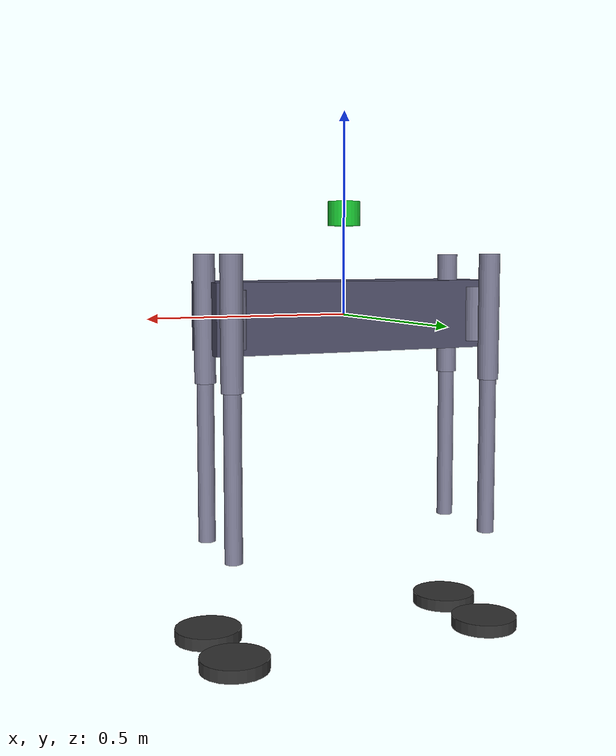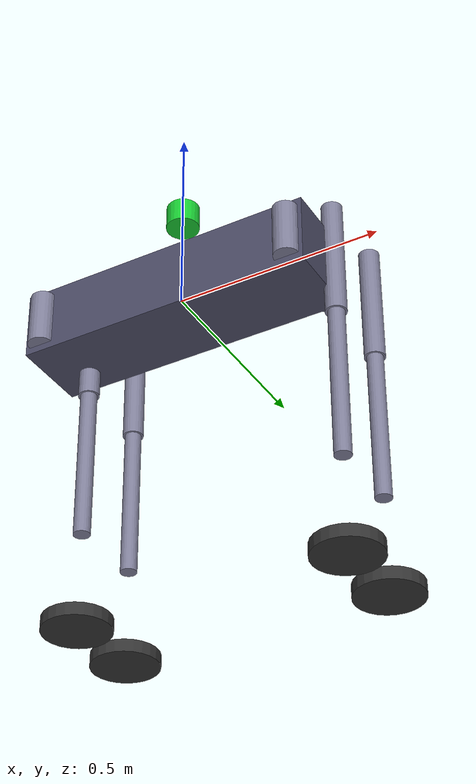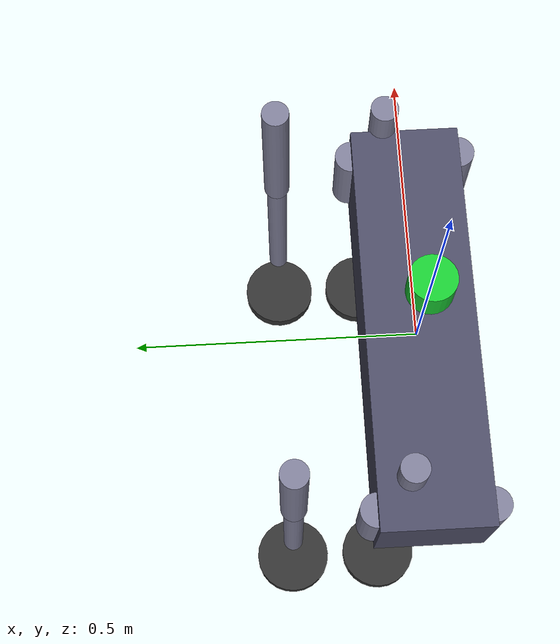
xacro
<?xml version="1.0"?>
<robot name="robot_dog" xmlns:xacro="http://www.ros.org/wiki/xacro">

  <!-- ========== 材料属性 ========== -->
  <material name="body_color">
    <color rgba="0.3 0.3 0.4 1.0"/>
  </material>
  <material name="leg_color">
    <color rgba="0.5 0.5 0.6 1.0"/>
  </material>
  <material name="wheel_color">
    <color rgba="0.2 0.2 0.2 1.0"/>
  </material>
  <material name="sensor_color">
    <color rgba="0.1 0.8 0.2 1.0"/>
  </material>

  <!-- ========== 躯体参数 (来自 MiniCheetah.h) ========== -->
  <xacro:property name="body_length" value="0.729"/>
  <xacro:property name="body_width" value="0.195"/>
  <xacro:property name="body_height" value="0.17"/>
  <xacro:property name="body_mass" value="27.0"/>

  <!-- 关节连杆参数 -->
  <xacro:property name="abad_link_length" value="0.136"/>
  <xacro:property name="hip_link_length" value="0.30"/>
  <xacro:property name="knee_link_length" value="0.452"/>
  <xacro:property name="wheel_radius" value="0.08"/>

  <!-- 每条腿的髋部位置 (body frame 原点在躯干几何中心) -->
  <!-- abadLocation = (bodyLength-0.08)/2, bodyWidth/2, 0 -->
  <!-- FR: (+x, -y) / FL: (+x, +y) / HR: (-x, -y) / HL: (-x, +y) -->
  <xacro:property name="hip_x" value="${(body_length - 0.08) / 2}"/>
  <xacro:property name="hip_y" value="${body_width / 2}"/>

  <!-- ========== 基础连杆 ========== -->
  <link name="base_link">
    <visual>
      <geometry>
        <box size="${body_length} ${body_width} ${body_height}"/>
      </geometry>
      <material name="body_color"/>
    </visual>
    <collision>
      <geometry>
        <box size="${body_length} ${body_width} ${body_height}"/>
      </geometry>
    </collision>
    <inertial>
      <mass value="${body_mass}"/>
      <origin xyz="0.00374 0.00011 -0.00480"/>
      <inertia ixx="0.3172" ixy="0.2057" ixz="-0.0412"
               iyy="1.2557" iyz="-0.0012" izz="1.4430"/>
    </inertial>
  </link>

  <!-- IMU 传感器（YESENSE，位于躯干内） -->
  <link name="imu_link">
    <visual>
      <geometry><box size="0.04 0.04 0.02"/></geometry>
      <material name="sensor_color"/>
    </visual>
  </link>
  <joint name="imu_joint" type="fixed">
    <parent link="base_link"/>
    <child link="imu_link"/>
    <origin xyz="0 0 0.02"/>
  </joint>

  <!-- LiDAR 传感器（DJI 360S，位于顶部） -->
  <link name="laser_link">
    <visual>
      <geometry><cylinder radius="0.04" length="0.06"/></geometry>
      <material name="sensor_color"/>
    </visual>
  </link>
  <joint name="laser_joint" type="fixed">
    <parent link="base_link"/>
    <child link="laser_link"/>
    <origin xyz="0 0 0.25" rpy="0 0 0"/>
  </joint>

  <!-- ========== 四条腿 ========== -->

  <!-- 腿: 前缀, x_sign(+1=前, -1=后), y_sign(+1=左, -1=右) -->
  <xacro:macro name="leg" params="prefix leg_idx x_sign y_sign">
    <!-- abad 侧摆关节 -->
    <joint name="leg_${prefix}_abad_joint" type="revolute">
      <parent link="base_link"/>
      <child link="leg_${prefix}_abad_link"/>
      <origin xyz="${x_sign * hip_x} ${y_sign * hip_y} 0" rpy="0 0 0"/>
      <axis xyz="0 1 0"/>
      <limit effort="240" velocity="15.0" lower="-0.8" upper="0.8"/>
    </joint>
    <link name="leg_${prefix}_abad_link">
      <visual>
        <geometry><cylinder radius="0.03" length="${abad_link_length}"/></geometry>
        <material name="leg_color"/>
      </visual>
      <inertial>
        <mass value="2.55"/>
        <origin xyz="0 ${0.021} 0"/>
        <inertia ixx="0.0007" ixy="-0.00004" ixz="0.000005"
                 iyy="0.0012" iyz="0.000024" izz="0.00096"/>
      </inertial>
    </link>

    <!-- hip 俯仰关节 -->
    <joint name="leg_${prefix}_hip_joint" type="revolute">
      <parent link="leg_${prefix}_abad_link"/>
      <child link="leg_${prefix}_hip_link"/>
      <origin xyz="0.05 ${abad_link_length} 0" rpy="0 0 0"/>
      <axis xyz="0 1 0"/>
      <limit effort="240" velocity="15.0" lower="-1.5" upper="1.5"/>
    </joint>
    <link name="leg_${prefix}_hip_link">
      <visual>
        <geometry><cylinder radius="0.025" length="${hip_link_length}"/></geometry>
        <material name="leg_color"/>
      </visual>
      <inertial>
        <mass value="4.12"/>
        <origin xyz="0 0.293 ${-0.033}"/>
        <inertia ixx="0.194" ixy="0.0046" ixz="-0.0021"
                 iyy="0.028" iyz="0.0372" izz="0.170"/>
      </inertial>
    </link>

    <!-- knee 膝关节 -->
    <joint name="leg_${prefix}_knee_joint" type="revolute">
      <parent link="leg_${prefix}_hip_link"/>
      <child link="leg_${prefix}_knee_link"/>
      <origin xyz="0 0 ${-hip_link_length}" rpy="0 0 0"/>
      <axis xyz="0 1 0"/>
      <limit effort="240" velocity="15.0" lower="-2.5" upper="2.5"/>
    </joint>
    <link name="leg_${prefix}_knee_link">
      <visual>
        <geometry><cylinder radius="0.02" length="${knee_link_length}"/></geometry>
        <material name="leg_color"/>
      </visual>
      <inertial>
        <mass value="3.31"/>
        <origin xyz="0 0.019 ${-0.257}"/>
        <inertia ixx="0.037" ixy="0.0002" ixz="-0.0005"
                 iyy="0.041" iyz="0.0027" izz="0.008"/>
      </inertial>
    </link>

    <!-- wheel 轮关节 (continuous, 轮子连续旋转) -->
    <joint name="leg_${prefix}_wheel_joint" type="continuous">
      <parent link="leg_${prefix}_knee_link"/>
      <child link="leg_${prefix}_wheel_link"/>
      <origin xyz="0 0 ${-knee_link_length}" rpy="0 0 0"/>
      <axis xyz="0 1 0"/>
    </joint>
    <link name="leg_${prefix}_wheel_link">
      <visual>
        <geometry><cylinder radius="${wheel_radius}" length="0.03"/></geometry>
        <material name="wheel_color"/>
      </visual>
      <inertial>
        <mass value="0.15"/>
        <inertia ixx="0.0001" iyy="0.0001" izz="0.0002"/>
      </inertial>
    </link>
  </xacro:macro>

  <xacro:leg prefix="FR" leg_idx="0" x_sign="1" y_sign="-1"/>
  <xacro:leg prefix="FL" leg_idx="1" x_sign="1" y_sign="1"/>
  <xacro:leg prefix="HR" leg_idx="2" x_sign="-1" y_sign="-1"/>
  <xacro:leg prefix="HL" leg_idx="3" x_sign="-1" y_sign="1"/>

</robot>
